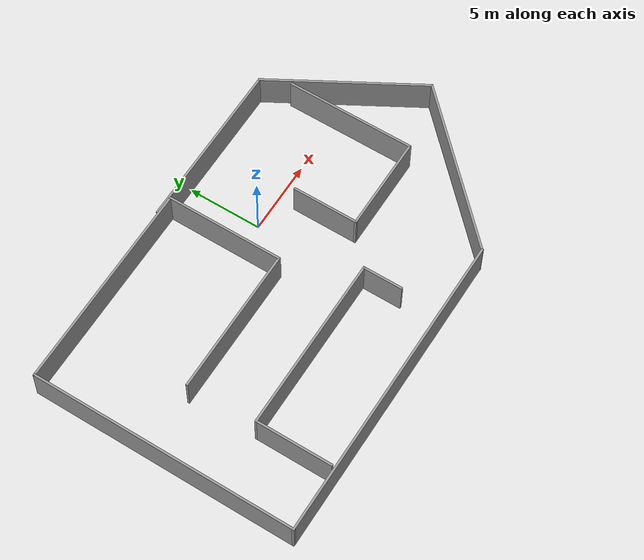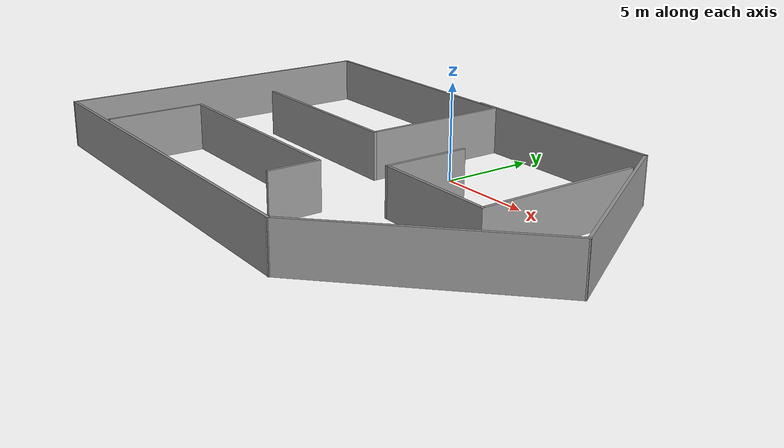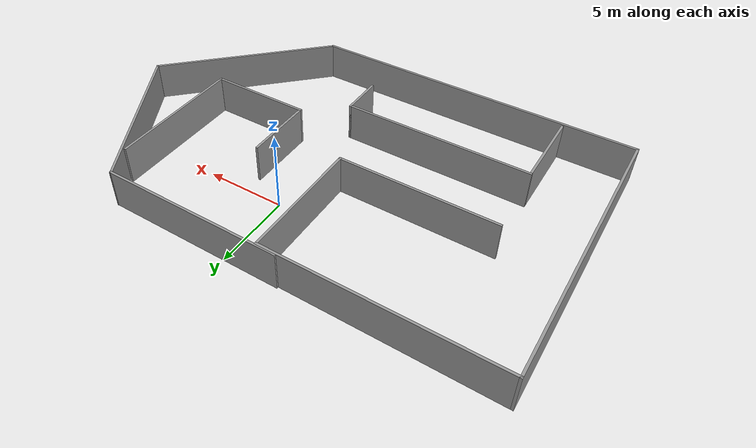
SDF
<?xml version='1.0'?>
<sdf version='1.6'>
  <model name='Hotel'>
    <pose frame=''>-1.52746 -4.02799 0 0 -0 0</pose>
    <link name='Wall_1'>
      <collision name='Wall_1_Collision'>
        <geometry>
          <box>
            <size>11.5 0.15 2.5</size>
          </box>
        </geometry>
        <pose frame=''>0 0 1.25 0 -0 0</pose>
      </collision>
      <visual name='Wall_1_Visual'>
        <pose frame=''>0 0 1.25 0 -0 0</pose>
        <geometry>
          <box>
            <size>11.5 0.15 2.5</size>
          </box>
        </geometry>
        <material>
          <script>
            <uri>file://media/materials/scripts/gazebo.material</uri>
            <name>Gazebo/Grey</name>
          </script>
          <ambient>1 1 1 1</ambient>
        </material>
        <meta>
          <layer>0</layer>
        </meta>
      </visual>
      <pose frame=''>3.71246 8.97799 0 0 -0 0</pose>
    </link>
    <link name='Wall_11'>
      <collision name='Wall_11_Collision'>
        <geometry>
          <box>
            <size>21.25 0.15 2.5</size>
          </box>
        </geometry>
        <pose frame=''>0 0 1.25 0 -0 0</pose>
      </collision>
      <visual name='Wall_11_Visual'>
        <pose frame=''>0 0 1.25 0 -0 0</pose>
        <geometry>
          <box>
            <size>21.25 0.15 2.5</size>
          </box>
        </geometry>
        <material>
          <script>
            <uri>file://media/materials/scripts/gazebo.material</uri>
            <name>Gazebo/Grey</name>
          </script>
          <ambient>1 1 1 1</ambient>
        </material>
        <meta>
          <layer>0</layer>
        </meta>
      </visual>
      <pose frame=''>-4.29353 -8.97438 0 0 -0 3.14159</pose>
    </link>
    <link name='Wall_12'>
      <collision name='Wall_12_Collision'>
        <geometry>
          <box>
            <size>18 0.15 2.5</size>
          </box>
        </geometry>
        <pose frame=''>0 0 1.25 0 -0 0</pose>
      </collision>
      <visual name='Wall_12_Visual'>
        <pose frame=''>0 0 1.25 0 -0 0</pose>
        <geometry>
          <box>
            <size>18 0.15 2.5</size>
          </box>
        </geometry>
        <material>
          <script>
            <uri>file://media/materials/scripts/gazebo.material</uri>
            <name>Gazebo/Grey</name>
          </script>
          <ambient>1 1 1 1</ambient>
        </material>
        <meta>
          <layer>0</layer>
        </meta>
      </visual>
      <pose frame=''>-14.8435 -0.049376 0 0 -0 1.5708</pose>
    </link>
    <link name='Wall_13'>
      <collision name='Wall_13_Collision'>
        <geometry>
          <box>
            <size>14.25 0.15 2.5</size>
          </box>
        </geometry>
        <pose frame=''>0 0 1.25 0 -0 0</pose>
      </collision>
      <visual name='Wall_13_Visual'>
        <pose frame=''>0 0 1.25 0 -0 0</pose>
        <geometry>
          <box>
            <size>14.25 0.15 2.5</size>
          </box>
        </geometry>
        <material>
          <script>
            <uri>file://media/materials/scripts/gazebo.material</uri>
            <name>Gazebo/Grey</name>
          </script>
          <ambient>1 1 1 1</ambient>
        </material>
        <meta>
          <layer>0</layer>
        </meta>
      </visual>
      <pose frame=''>-7.79353 8.87562 0 0 -0 0</pose>
    </link>
    <link name='Wall_14'>
      <collision name='Wall_14_Collision'>
        <geometry>
          <box>
            <size>8 0.15 2.5</size>
          </box>
        </geometry>
        <pose frame=''>0 0 1.25 0 -0 0</pose>
      </collision>
      <visual name='Wall_14_Visual'>
        <pose frame=''>0 0 1.25 0 -0 0</pose>
        <geometry>
          <box>
            <size>8 0.15 2.5</size>
          </box>
        </geometry>
        <material>
          <script>
            <uri>file://media/materials/scripts/gazebo.material</uri>
            <name>Gazebo/Grey</name>
          </script>
          <ambient>1 1 1 1</ambient>
        </material>
        <meta>
          <layer>0</layer>
        </meta>
      </visual>
      <pose frame=''>-0.743529 4.95062 0 0 -0 -1.5708</pose>
    </link>
    <link name='Wall_15'>
      <collision name='Wall_15_Collision'>
        <geometry>
          <box>
            <size>10 0.15 2.5</size>
          </box>
        </geometry>
        <pose frame=''>0 0 1.25 0 -0 0</pose>
      </collision>
      <visual name='Wall_15_Visual'>
        <pose frame=''>0 0 1.25 0 -0 0</pose>
        <geometry>
          <box>
            <size>10 0.15 2.5</size>
          </box>
        </geometry>
        <material>
          <script>
            <uri>file://media/materials/scripts/gazebo.material</uri>
            <name>Gazebo/Grey</name>
          </script>
          <ambient>1 1 1 1</ambient>
        </material>
        <meta>
          <layer>0</layer>
        </meta>
      </visual>
      <pose frame=''>-5.66853 1.02562 0 0 -0 3.14159</pose>
    </link>
    <link name='Wall_17'>
      <collision name='Wall_17_Collision'>
        <geometry>
          <box>
            <size>5.25 0.15 2.5</size>
          </box>
        </geometry>
        <pose frame=''>0 0 1.25 0 -0 0</pose>
      </collision>
      <visual name='Wall_17_Visual'>
        <pose frame=''>0 0 1.25 0 -0 0</pose>
        <geometry>
          <box>
            <size>5.25 0.15 2.5</size>
          </box>
        </geometry>
        <material>
          <script>
            <uri>file://media/materials/scripts/gazebo.material</uri>
            <name>Gazebo/Grey</name>
          </script>
          <ambient>1 1 1 1</ambient>
        </material>
        <meta>
          <layer>0</layer>
        </meta>
      </visual>
      <pose frame=''>-10.4086 -6.15593 0 0 -0 -1.5708</pose>
    </link>
    <link name='Wall_19'>
      <collision name='Wall_19_Collision'>
        <geometry>
          <box>
            <size>12 0.15 2.5</size>
          </box>
        </geometry>
        <pose frame=''>0 0 1.25 0 -0 0</pose>
      </collision>
      <visual name='Wall_19_Visual'>
        <pose frame=''>0 0 1.25 0 -0 0</pose>
        <geometry>
          <box>
            <size>12 0.15 2.5</size>
          </box>
        </geometry>
        <material>
          <script>
            <uri>file://media/materials/scripts/gazebo.material</uri>
            <name>Gazebo/Grey</name>
          </script>
          <ambient>1 1 1 1</ambient>
        </material>
        <meta>
          <layer>0</layer>
        </meta>
      </visual>
      <pose frame=''>-4.48365 -3.60593 0 0 -0 0</pose>
    </link>
    <link name='Wall_2'>
      <collision name='Wall_2_Collision'>
        <geometry>
          <box>
            <size>11 0.15 2.5</size>
          </box>
        </geometry>
        <pose frame=''>0 0 1.25 0 -0 0</pose>
      </collision>
      <visual name='Wall_2_Visual'>
        <pose frame=''>0 0 1.25 0 -0 0</pose>
        <geometry>
          <box>
            <size>11 0.15 2.5</size>
          </box>
        </geometry>
        <material>
          <script>
            <uri>file://media/materials/scripts/gazebo.material</uri>
            <name>Gazebo/Grey</name>
          </script>
          <ambient>1 1 1 1</ambient>
        </material>
        <meta>
          <layer>0</layer>
        </meta>
      </visual>
      <pose frame=''>12.1 4.2798 0 0 -0 -1.0472</pose>
    </link>
    <link name='Wall_20'>
      <collision name='Wall_20_Collision'>
        <geometry>
          <box>
            <size>2.75 0.15 2.5</size>
          </box>
        </geometry>
        <pose frame=''>0 0 1.25 0 -0 0</pose>
      </collision>
      <visual name='Wall_20_Visual'>
        <pose frame=''>0 0 1.25 0 -0 0</pose>
        <geometry>
          <box>
            <size>2.75 0.15 2.5</size>
          </box>
        </geometry>
        <material>
          <script>
            <uri>file://media/materials/scripts/gazebo.material</uri>
            <name>Gazebo/Grey</name>
          </script>
          <ambient>1 1 1 1</ambient>
        </material>
        <meta>
          <layer>0</layer>
        </meta>
      </visual>
      <pose frame=''>1.44135 -4.90593 0 0 -0 -1.5708</pose>
    </link>
    <link name='Wall_3'>
      <collision name='Wall_3_Collision'>
        <geometry>
          <box>
            <size>12.25 0.15 2.5</size>
          </box>
        </geometry>
        <pose frame=''>0 0 1.25 0 -0 0</pose>
      </collision>
      <visual name='Wall_3_Visual'>
        <pose frame=''>0 0 1.25 0 -0 0</pose>
        <geometry>
          <box>
            <size>12.25 0.15 2.5</size>
          </box>
        </geometry>
        <material>
          <script>
            <uri>file://media/materials/scripts/gazebo.material</uri>
            <name>Gazebo/Grey</name>
          </script>
          <ambient>1 1 1 1</ambient>
        </material>
        <meta>
          <layer>0</layer>
        </meta>
      </visual>
      <pose frame=''>10.5345 -4.69638 0 0 -0 -2.35619</pose>
    </link>
    <link name='Wall_7'>
      <collision name='Wall_7_Collision'>
        <geometry>
          <box>
            <size>8.75 0.15 2.5</size>
          </box>
        </geometry>
        <pose frame=''>0 0 1.25 0 -0 0</pose>
      </collision>
      <visual name='Wall_7_Visual'>
        <pose frame=''>0 0 1.25 0 -0 0</pose>
        <geometry>
          <box>
            <size>8.75 0.15 2.5</size>
          </box>
        </geometry>
        <material>
          <script>
            <uri>file://media/materials/scripts/gazebo.material</uri>
            <name>Gazebo/Grey</name>
          </script>
          <ambient>1 1 1 1</ambient>
        </material>
        <meta>
          <layer>0</layer>
        </meta>
      </visual>
      <pose frame=''>10.2097 2.75593 0 0 -0 -1.5708</pose>
    </link>
    <link name='Wall_8'>
      <collision name='Wall_8_Collision'>
        <geometry>
          <box>
            <size>6.5 0.15 2.5</size>
          </box>
        </geometry>
        <pose frame=''>0 0 1.25 0 -0 0</pose>
      </collision>
      <visual name='Wall_8_Visual'>
        <pose frame=''>0 0 1.25 0 -0 0</pose>
        <geometry>
          <box>
            <size>6.5 0.15 2.5</size>
          </box>
        </geometry>
        <material>
          <script>
            <uri>file://media/materials/scripts/gazebo.material</uri>
            <name>Gazebo/Grey</name>
          </script>
          <ambient>1 1 1 1</ambient>
        </material>
        <meta>
          <layer>0</layer>
        </meta>
      </visual>
      <pose frame=''>7.03465 -1.54407 0 0 -0 3.14159</pose>
    </link>
    <link name='Wall_9'>
      <collision name='Wall_9_Collision'>
        <geometry>
          <box>
            <size>4.5 0.15 2.5</size>
          </box>
        </geometry>
        <pose frame=''>0 0 1.25 0 -0 0</pose>
      </collision>
      <visual name='Wall_9_Visual'>
        <pose frame=''>0 0 1.25 0 -0 0</pose>
        <geometry>
          <box>
            <size>4.5 0.15 2.5</size>
          </box>
        </geometry>
        <material>
          <script>
            <uri>file://media/materials/scripts/gazebo.material</uri>
            <name>Gazebo/Grey</name>
          </script>
          <ambient>1 1 1 1</ambient>
        </material>
        <meta>
          <layer>0</layer>
        </meta>
      </visual>
      <pose frame=''>3.85965 0.630926 0 0 -0 1.5708</pose>
    </link>
    <static>1</static>
  </model>
</sdf>
